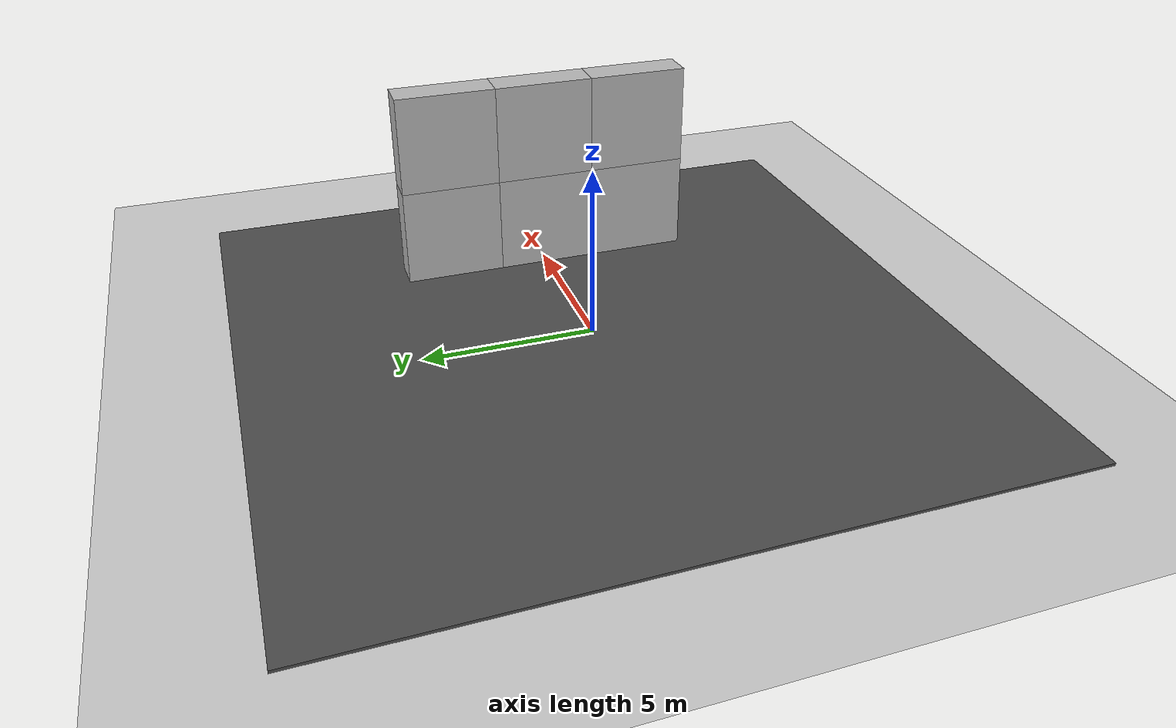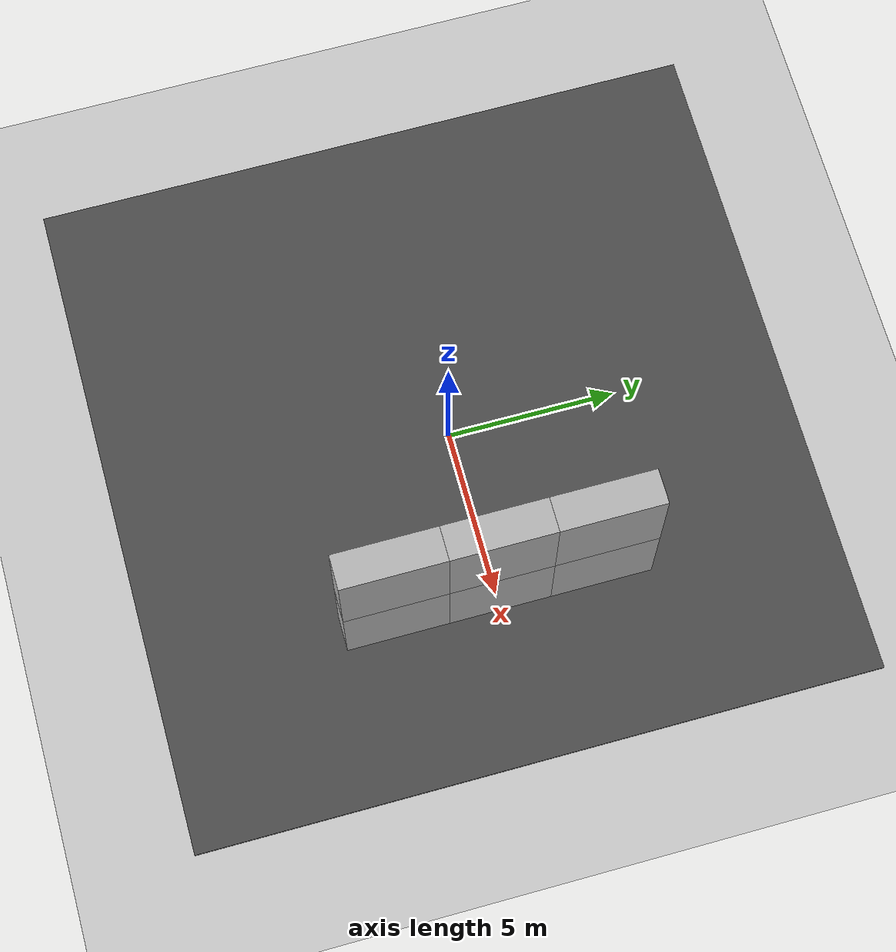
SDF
<sdf version="1.6">
 <world name="default">
  <light name="sun9" type="spotlight">
   <pose>-5 -5 3 0 -0 0</pose>
   <diffuse>0.1 0.1 0.1 1</diffuse>
   <specular>0.1 0.1 0.1 1</specular>
   <attenuation>
    <range>20</range>
    <constant>0.9</constant>
    <linear>0.01</linear>
    <quadratic>0.001</quadratic>
   </attenuation>
   <direction>-0 0 -1</direction>
  </light>
  <light name="sun10" type="spotlight">
   <pose>-5 -5 3 0 -0 0</pose>
   <diffuse>0.1 0.1 0.1 1</diffuse>
   <specular>0.1 0.1 0.1 1</specular>
   <attenuation>
    <range>20</range>
    <constant>0.9</constant>
    <linear>0.01</linear>
    <quadratic>0.001</quadratic>
   </attenuation>
   <direction>-0 0 -1</direction>
  </light>
  <light name="sun11" type="spotlight">
   <pose>-5 -5 3 0 -0 0</pose>
   <diffuse>0.1 0.1 0.1 1</diffuse>
   <specular>0.1 0.1 0.1 1</specular>
   <attenuation>
    <range>20</range>
    <constant>0.9</constant>
    <linear>0.01</linear>
    <quadratic>0.001</quadratic>
   </attenuation>
   <direction>-0 0 -1</direction>
  </light>
  <light name="sun12" type="spotlight">
   <pose>-5 -5 3 0 -0 0</pose>
   <diffuse>0.1 0.1 0.1 1</diffuse>
   <specular>0.1 0.1 0.1 1</specular>
   <attenuation>
    <range>20</range>
    <constant>0.9</constant>
    <linear>0.01</linear>
    <quadratic>0.001</quadratic>
   </attenuation>
   <direction>-0 0 -1</direction>
  </light>
  <light name="sun13" type="spotlight">
   <pose>-5 -5 3 0 -0 0</pose>
   <diffuse>0.1 0.1 0.1 1</diffuse>
   <specular>0.1 0.1 0.1 1</specular>
   <attenuation>
    <range>20</range>
    <constant>0.9</constant>
    <linear>0.01</linear>
    <quadratic>0.001</quadratic>
   </attenuation>
   <direction>-0 0 -1</direction>
  </light>
  <light name="sun14" type="spotlight">
   <pose>-5 -5 3 0 -0 0</pose>
   <diffuse>0.1 0.1 0.1 1</diffuse>
   <specular>0.1 0.1 0.1 1</specular>
   <attenuation>
    <range>20</range>
    <constant>0.9</constant>
    <linear>0.01</linear>
    <quadratic>0.001</quadratic>
   </attenuation>
   <direction>-0 0 -1</direction>
  </light>
  <light name="sun15" type="spotlight">
   <pose>-5 -5 3 0 -0 0</pose>
   <diffuse>0.1 0.1 0.1 1</diffuse>
   <specular>0.1 0.1 0.1 1</specular>
   <attenuation>
    <range>20</range>
    <constant>0.9</constant>
    <linear>0.01</linear>
    <quadratic>0.001</quadratic>
   </attenuation>
   <direction>-0 0 -1</direction>
  </light>
  <light name="sun16" type="spotlight">
   <pose>-5 -5 3 0 -0 0</pose>
   <diffuse>0.1 0.1 0.1 1</diffuse>
   <specular>0.1 0.1 0.1 1</specular>
   <attenuation>
    <range>20</range>
    <constant>0.9</constant>
    <linear>0.01</linear>
    <quadratic>0.001</quadratic>
   </attenuation>
   <direction>-0 0 -1</direction>
  </light>
  <light name="sun17" type="spotlight">
   <pose>0 0 3 0 -0 0</pose>
   <diffuse>0.1 0.1 0.1 1</diffuse>
   <specular>0.1 0.1 0.1 1</specular>
   <attenuation>
    <range>10</range>
    <constant>0.9</constant>
    <linear>0.01</linear>
    <quadratic>0.001</quadratic>
   </attenuation>
   <direction>-0 0 -1</direction>
  </light>
  <light name="sun18" type="spotlight">
   <pose>0 0 3 0 -0 0</pose>
   <diffuse>0.1 0.1 0.1 1</diffuse>
   <specular>0.1 0.1 0.1 1</specular>
   <attenuation>
    <range>10</range>
    <constant>0.9</constant>
    <linear>0.01</linear>
    <quadratic>0.001</quadratic>
   </attenuation>
   <direction>-0 0 -1</direction>
  </light>
  <light name="sun19" type="spotlight">
   <pose>0 0 3 0 -0 0</pose>
   <diffuse>0.1 0.1 0.1 1</diffuse>
   <specular>0.1 0.1 0.1 1</specular>
   <attenuation>
    <range>10</range>
    <constant>0.9</constant>
    <linear>0.01</linear>
    <quadratic>0.001</quadratic>
   </attenuation>
   <direction>-0 0 -1</direction>
  </light>
  <light name="sun20" type="spotlight">
   <pose>0 0 3 0 -0 0</pose>
   <diffuse>0.1 0.1 0.1 1</diffuse>
   <specular>0.1 0.1 0.1 1</specular>
   <attenuation>
    <range>10</range>
    <constant>0.9</constant>
    <linear>0.01</linear>
    <quadratic>0.001</quadratic>
   </attenuation>
   <direction>-0 0 -1</direction>
  </light>
  <light name="sun21" type="spotlight">
   <pose>0 0 3 0 -0 0</pose>
   <diffuse>0.1 0.1 0.1 1</diffuse>
   <specular>0.1 0.1 0.1 1</specular>
   <attenuation>
    <range>10</range>
    <constant>0.9</constant>
    <linear>0.01</linear>
    <quadratic>0.001</quadratic>
   </attenuation>
   <direction>-0 0 -1</direction>
  </light>
  <light name="sun22" type="spotlight">
   <pose>0 0 3 0 -0 0</pose>
   <diffuse>0.1 0.1 0.1 1</diffuse>
   <specular>0.1 0.1 0.1 1</specular>
   <attenuation>
    <range>10</range>
    <constant>0.9</constant>
    <linear>0.01</linear>
    <quadratic>0.001</quadratic>
   </attenuation>
   <direction>-0 0 -1</direction>
  </light>
  <light name="sun23" type="spotlight">
   <pose>0 0 3 0 -0 0</pose>
   <diffuse>0.1 0.1 0.1 1</diffuse>
   <specular>0.1 0.1 0.1 1</specular>
   <attenuation>
    <range>10</range>
    <constant>0.9</constant>
    <linear>0.01</linear>
    <quadratic>0.001</quadratic>
   </attenuation>
   <direction>-0 0 -1</direction>
  </light>
  <light name="sun24" type="spotlight">
   <pose>0 0 3 0 -0 0</pose>
   <diffuse>0.1 0.1 0.1 1</diffuse>
   <specular>0.1 0.1 0.1 1</specular>
   <attenuation>
    <range>10</range>
    <constant>0.9</constant>
    <linear>0.01</linear>
    <quadratic>0.001</quadratic>
   </attenuation>
   <direction>-0 0 -1</direction>
  </light>
  <light name="sun25" type="spotlight">
   <pose>0 0 3 0 -0 0</pose>
   <diffuse>0.1 0.1 0.1 1</diffuse>
   <specular>0.1 0.1 0.1 1</specular>
   <attenuation>
    <range>10</range>
    <constant>0.9</constant>
    <linear>0.01</linear>
    <quadratic>0.001</quadratic>
   </attenuation>
   <direction>-0 0 -1</direction>
  </light>
  <light name="sun26" type="spotlight">
   <pose>0 0 3 0 -0 0</pose>
   <diffuse>0.1 0.1 0.1 1</diffuse>
   <specular>0.1 0.1 0.1 1</specular>
   <attenuation>
    <range>10</range>
    <constant>0.9</constant>
    <linear>0.01</linear>
    <quadratic>0.001</quadratic>
   </attenuation>
   <direction>-0 0 -1</direction>
  </light>
  <light name="sun27" type="spotlight">
   <pose>0 0 3 0 -0 0</pose>
   <diffuse>0.1 0.1 0.1 1</diffuse>
   <specular>0.1 0.1 0.1 1</specular>
   <attenuation>
    <range>10</range>
    <constant>0.9</constant>
    <linear>0.01</linear>
    <quadratic>0.001</quadratic>
   </attenuation>
   <direction>-0 0 -1</direction>
  </light>
  <light name="sun28" type="spotlight">
   <pose>0 0 3 0 -0 0</pose>
   <diffuse>0.1 0.1 0.1 1</diffuse>
   <specular>0.1 0.1 0.1 1</specular>
   <attenuation>
    <range>10</range>
    <constant>0.9</constant>
    <linear>0.01</linear>
    <quadratic>0.001</quadratic>
   </attenuation>
   <direction>-0 0 -1</direction>
  </light>
  <light name="sun29" type="spotlight">
   <pose>0 0 3 0 -0 0</pose>
   <diffuse>0.1 0.1 0.1 1</diffuse>
   <specular>0.1 0.1 0.1 1</specular>
   <attenuation>
    <range>10</range>
    <constant>0.9</constant>
    <linear>0.01</linear>
    <quadratic>0.001</quadratic>
   </attenuation>
   <direction>-0 0 -1</direction>
  </light>
  <light name="sun30" type="spotlight">
   <pose>0 0 3 0 -0 0</pose>
   <diffuse>0.1 0.1 0.1 1</diffuse>
   <specular>0.1 0.1 0.1 1</specular>
   <attenuation>
    <range>10</range>
    <constant>0.9</constant>
    <linear>0.01</linear>
    <quadratic>0.001</quadratic>
   </attenuation>
   <direction>-0 0 -1</direction>
  </light>
  <light name="sun31" type="spotlight">
   <pose>0 0 3 0 -0 0</pose>
   <diffuse>0.1 0.1 0.1 1</diffuse>
   <specular>0.1 0.1 0.1 1</specular>
   <attenuation>
    <range>10</range>
    <constant>0.9</constant>
    <linear>0.01</linear>
    <quadratic>0.001</quadratic>
   </attenuation>
   <direction>-0 0 -1</direction>
  </light>
  <light name="sun32" type="spotlight">
   <pose>0 0 3 0 -0 0</pose>
   <diffuse>0.1 0.1 0.1 1</diffuse>
   <specular>0.1 0.1 0.1 1</specular>
   <attenuation>
    <range>10</range>
    <constant>0.9</constant>
    <linear>0.01</linear>
    <quadratic>0.001</quadratic>
   </attenuation>
   <direction>-0 0 -1</direction>
  </light>
  <light name="sun33" type="spotlight">
   <pose>0 0 3 0 -0 0</pose>
   <diffuse>0.1 0.1 0.1 1</diffuse>
   <specular>0.1 0.1 0.1 1</specular>
   <attenuation>
    <range>10</range>
    <constant>0.9</constant>
    <linear>0.01</linear>
    <quadratic>0.001</quadratic>
   </attenuation>
   <direction>-0 0 -1</direction>
  </light>
  <light name="sun34" type="spotlight">
   <pose>0 0 3 0 -0 0</pose>
   <diffuse>0.1 0.1 0.1 1</diffuse>
   <specular>0.1 0.1 0.1 1</specular>
   <attenuation>
    <range>10</range>
    <constant>0.9</constant>
    <linear>0.01</linear>
    <quadratic>0.001</quadratic>
   </attenuation>
   <direction>-0 0 -1</direction>
  </light>
  <light name="sun35" type="spotlight">
   <pose>0 0 3 0 -0 0</pose>
   <diffuse>0.1 0.1 0.1 1</diffuse>
   <specular>0.1 0.1 0.1 1</specular>
   <attenuation>
    <range>10</range>
    <constant>0.9</constant>
    <linear>0.01</linear>
    <quadratic>0.001</quadratic>
   </attenuation>
   <direction>-0 0 -1</direction>
  </light>
  <light name="sun36" type="spotlight">
   <pose>0 0 3 0 -0 0</pose>
   <diffuse>0.1 0.1 0.1 1</diffuse>
   <specular>0.1 0.1 0.1 1</specular>
   <attenuation>
    <range>10</range>
    <constant>0.9</constant>
    <linear>0.01</linear>
    <quadratic>0.001</quadratic>
   </attenuation>
   <direction>-0 0 -1</direction>
  </light>
  <plugin name="ros_interface_plugin" filename="librotors_gazebo_ros_interface_plugin.so"/>
  <physics name="default_physics" default="0" type="ode">
   <ode>
    <solver>
     <type>quick</type>
     <iters>1000</iters>
     <sor>1.3</sor>
     <use_dynamic_moi_rescaling>0</use_dynamic_moi_rescaling>
    </solver>
    <constraints>
     <cfm>0</cfm>
     <erp>0.2</erp>
     <contact_max_correcting_vel>100</contact_max_correcting_vel>
     <contact_surface_layer>0.001</contact_surface_layer>
    </constraints>
   </ode>
   <max_step_size>0.01</max_step_size>
   <real_time_factor>1</real_time_factor>
   <real_time_update_rate>100</real_time_update_rate>
  </physics>
  <scene><ambient>0.4 0.4 0.4 1</ambient><background>0.7 0.7 0.7 1</background><shadows>1</shadows></scene>
  <spherical_coordinates>
   <surface_model>EARTH_WGS84</surface_model>
   <latitude_deg>0</latitude_deg>
   <longitude_deg>0</longitude_deg>
   <elevation>0</elevation>
   <heading_deg>0</heading_deg>
  </spherical_coordinates>
  <model name="ground_plane">
   <static>1</static>
   <link name="link">
    <collision name="collision">
     <geometry><plane><normal>0 0 1</normal><size>100 100</size></plane></geometry>
     <surface><friction><ode><mu>100</mu><mu2>50</mu2></ode></friction></surface>
    </collision>
    <visual name="visual">
     <cast_shadows>0</cast_shadows>
     <geometry><plane><normal>0 0 1</normal><size>100 100</size></plane></geometry>
     <material>
      <script><uri>file://media/materials/scripts/gazebo.material</uri><name>Gazebo/Grey</name></script>
     </material>
    </visual>
    <velocity_decay><linear>0</linear><angular>0</angular></velocity_decay>
   </link>
  </model>
  <model name="asphalt_plane">
   <static>1</static>
   <link name="link">
    <collision name="collision"><geometry><box><size>20 20 0.1</size></box></geometry></collision>
    <visual name="visual">
     <cast_shadows>0</cast_shadows>
     <geometry><box><size>20 20 0.1</size></box></geometry>
     <material>
      <script>
       <uri>model://asphalt_plane/materials/scripts</uri>
       <uri>model://asphalt_plane/materials/textures</uri>
       <name>vrc/asphalt</name>
      </script>
     </material>
    </visual>
    <velocity_decay><linear>0</linear><angular>0</angular></velocity_decay>
   </link>
  </model>
  <gravity>0 0 -9.8</gravity>
  <magnetic_field>6e-06 2.3e-05 -4.2e-05</magnetic_field>
  <atmosphere type="adiabatic"/>
  <model name="brick_box_3x1x3">
   <static>1</static>
   <link name="chassis">
    <pose>0 0 1.5 0 -0 0</pose>
    <collision name="collision"><geometry><box><size>3 1 3</size></box></geometry></collision>
    <visual name="visual">
     <geometry><mesh><uri>model://brick_box_3x1x3/meshes/simple_box.dae</uri><scale>3 1 3</scale></mesh></geometry>
     <material>
      <script>
       <uri>model://brick_box_3x1x3/materials/scripts</uri>
       <uri>model://brick_box_3x1x3/materials/textures</uri>
       <name>BrickBox/Diffuse</name>
      </script>
     </material>
    </visual>
   </link>
   <pose>5 0 0 0 -0 1.5708</pose>
  </model>
  <model name="brick_box_3x1x3_0">
   <static>1</static>
   <link name="chassis">
    <pose>0 0 1.5 0 -0 0</pose>
    <collision name="collision"><geometry><box><size>3 1 3</size></box></geometry></collision>
    <visual name="visual">
     <geometry><mesh><uri>model://brick_box_3x1x3/meshes/simple_box.dae</uri><scale>3 1 3</scale></mesh></geometry>
     <material>
      <script>
       <uri>model://brick_box_3x1x3/materials/scripts</uri>
       <uri>model://brick_box_3x1x3/materials/textures</uri>
       <name>BrickBox/Diffuse</name>
      </script>
     </material>
    </visual>
   </link>
   <pose>5 3 0 0 -0 1.5708</pose>
  </model>
  <model name="brick_box_3x1x3_1">
   <static>1</static>
   <link name="chassis">
    <pose>0 0 1.5 0 -0 0</pose>
    <collision name="collision"><geometry><box><size>3 1 3</size></box></geometry></collision>
    <visual name="visual">
     <geometry><mesh><uri>model://brick_box_3x1x3/meshes/simple_box.dae</uri><scale>3 1 3</scale></mesh></geometry>
     <material>
      <script>
       <uri>model://brick_box_3x1x3/materials/scripts</uri>
       <uri>model://brick_box_3x1x3/materials/textures</uri>
       <name>BrickBox/Diffuse</name>
      </script>
     </material>
    </visual>
   </link>
   <pose>5 -3 0 0 -0 1.5708</pose>
  </model>
  <model name="brick_box_3x1x3_2">
   <static>1</static>
   <link name="chassis">
    <pose>0 0 1.5 0 -0 0</pose>
    <collision name="collision"><geometry><box><size>3 1 3</size></box></geometry></collision>
    <visual name="visual">
     <geometry><mesh><uri>model://brick_box_3x1x3/meshes/simple_box.dae</uri><scale>3 1 3</scale></mesh></geometry>
     <material>
      <script>
       <uri>model://brick_box_3x1x3/materials/scripts</uri>
       <uri>model://brick_box_3x1x3/materials/textures</uri>
       <name>BrickBox/Diffuse</name>
      </script>
     </material>
    </visual>
   </link>
   <pose>5 3 3 0 -0 1.5708</pose>
  </model>
  <model name="brick_box_3x1x3_3">
   <static>1</static>
   <link name="chassis">
    <pose>0 0 1.5 0 -0 0</pose>
    <collision name="collision"><geometry><box><size>3 1 3</size></box></geometry></collision>
    <visual name="visual">
     <geometry><mesh><uri>model://brick_box_3x1x3/meshes/simple_box.dae</uri><scale>3 1 3</scale></mesh></geometry>
     <material>
      <script>
       <uri>model://brick_box_3x1x3/materials/scripts</uri>
       <uri>model://brick_box_3x1x3/materials/textures</uri>
       <name>BrickBox/Diffuse</name>
      </script>
     </material>
    </visual>
   </link>
   <pose>5 0 3 0 -0 1.5708</pose>
  </model>
  <model name="brick_box_3x1x3_4">
   <static>1</static>
   <link name="chassis">
    <pose>0 0 1.5 0 -0 0</pose>
    <collision name="collision"><geometry><box><size>3 1 3</size></box></geometry></collision>
    <visual name="visual">
     <geometry><mesh><uri>model://brick_box_3x1x3/meshes/simple_box.dae</uri><scale>3 1 3</scale></mesh></geometry>
     <material>
      <script>
       <uri>model://brick_box_3x1x3/materials/scripts</uri>
       <uri>model://brick_box_3x1x3/materials/textures</uri>
       <name>BrickBox/Diffuse</name>
      </script>
     </material>
    </visual>
   </link>
   <pose>5 -3 3 0 -0 1.5708</pose>
  </model>
 </world>
</sdf>
